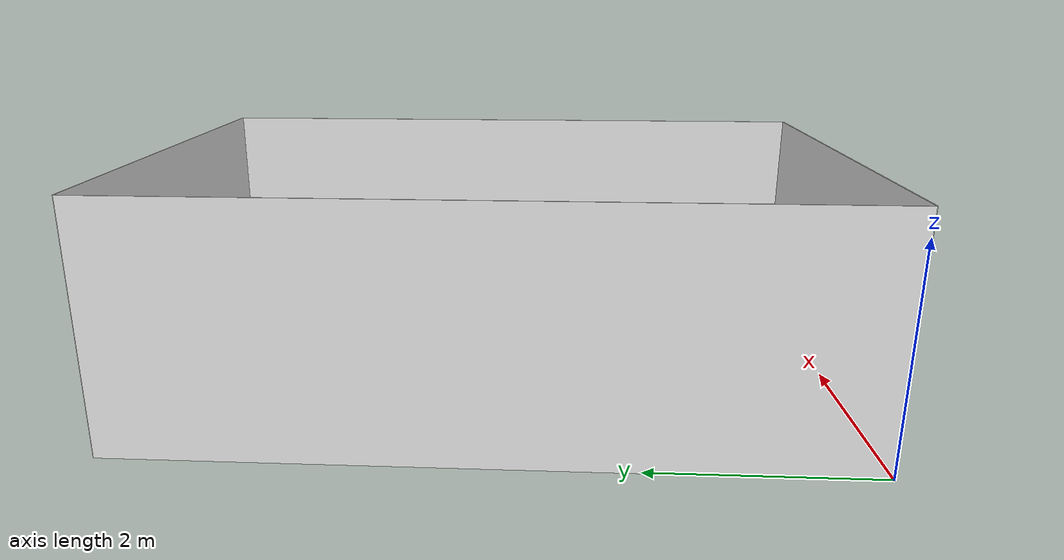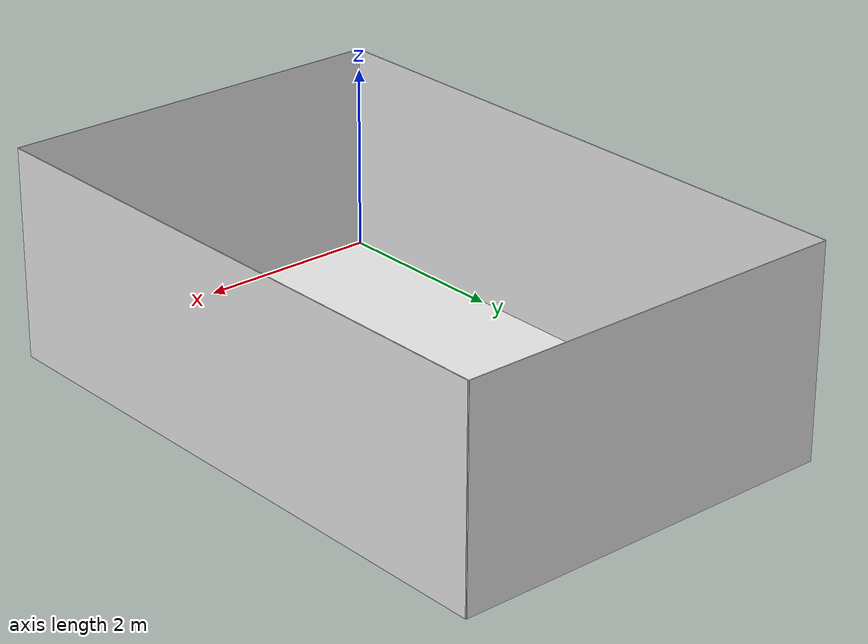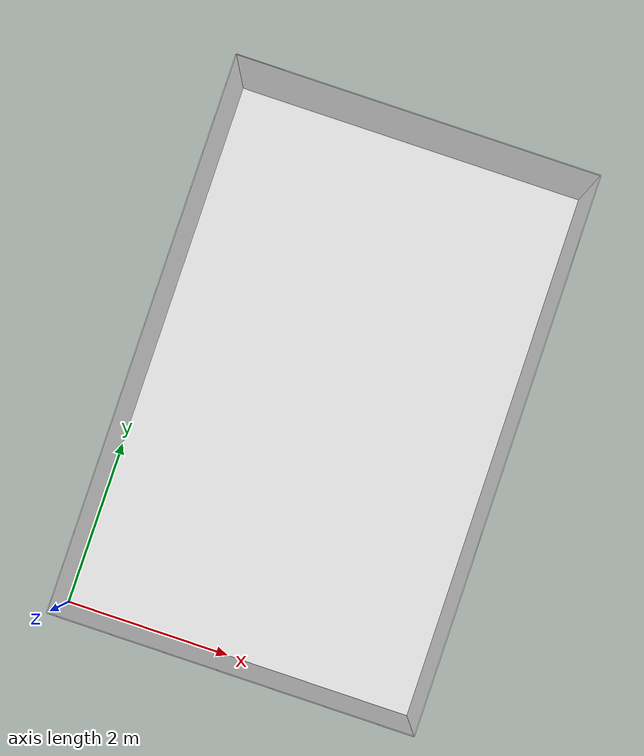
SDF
<?xml version='1.0'?>
<sdf version='1.6'>
  <model name='basement_tank_model'>
    <link name='basement_tank'>
      <inertial>
        <mass>1</mass>
      </inertial>

      <collision name='bottom'>
        <laser_retro>50</laser_retro>
        <pose frame=''>2.135 3.27 0.005 0 -0 0</pose>
        <geometry>
          <box>
            <size>4.27 6.54 0.01</size>
          </box>
        </geometry>
      </collision>
      <visual name='visual1'>
        <laser_retro>50</laser_retro>
        <pose frame=''>2.135 3.27 0.005 0 -0 0</pose>
        <geometry>
          <box>
            <size>4.27 6.54 0.01</size>
          </box>
        </geometry>
        <material>
          <script>
            <uri>file://usr/share/gz/gz-sim8/media/gazebo.material</uri>
            <name>Gazebo/White</name>
          </script>
        </material>
      </visual>

      <collision name='left_side'>
        <laser_retro>50</laser_retro>
        <pose frame=''>-0.005 3.27 1.12 0 -0 0</pose>
        <geometry>
          <box>
            <size>0.01 6.54 2.24</size>
          </box>
        </geometry>
      </collision>
      <visual name='visual2'>
        <laser_retro>50</laser_retro>
        <pose frame=''>-0.005 3.27 1.12 0 -0 0</pose>
        <geometry>
          <box>
            <size>0.01 6.54 2.24</size>
          </box>
        </geometry>
        <material>
          <script>
            <uri>file://usr/share/gz/gz-sim8/media/gazebo.material</uri>
            <name>Gazebo/White</name>
          </script>
        </material>
      </visual>

      <collision name='right_side'>
        <laser_retro>50</laser_retro>
        <pose frame=''>4.275 3.27 1.12 0 -0 0</pose>
        <geometry>
          <box>
            <size>0.01 6.54 2.24</size>
          </box>
        </geometry>
      </collision>
      <visual name='visual3'>
        <laser_retro>50</laser_retro>
        <pose frame=''>4.275 3.27 1.12 0 -0 0</pose>
        <geometry>
          <box>
            <size>0.01 6.54 2.24</size>
          </box>
        </geometry>
        <material>
          <script>
            <uri>file://usr/share/gz/gz-sim8/media/gazebo.material</uri>
            <name>Gazebo/White</name>
          </script>
        </material>
      </visual>

      <collision name='front_side'>
        <laser_retro>50</laser_retro>
        <pose frame=''>2.135 -0.005 1.12 0 -0 0</pose>
        <geometry>
          <box>
            <size>4.27 0.01 2.24</size>
          </box>
        </geometry>
      </collision>
      <visual name='visual4'>
        <laser_retro>50</laser_retro>
        <pose frame=''>2.135 -0.005 1.12 0 -0 0</pose>
        <geometry>
          <box>
            <size>4.27 0.01 2.24</size>
          </box>
        </geometry>
        <material>
          <script>
            <uri>file://usr/share/gz/gz-sim8/media/gazebo.material</uri>
            <name>Gazebo/White</name>
          </script>
        </material>
      </visual>

      <collision name='back_side'>
        <laser_retro>50</laser_retro>
        <pose frame=''>2.135 6.545 1.12 0 -0 0</pose>
        <geometry>
          <box>
            <size>4.27 0.01 2.24</size>
          </box>
        </geometry>
      </collision>
      <visual name='visual5'>
        <laser_retro>50</laser_retro>
        <pose frame=''>2.135 6.545 1.12 0 -0 0</pose>
        <geometry>
          <box>
            <size>4.27 0.01 2.24</size>
          </box>
        </geometry>
        <material>
          <script>
            <uri>file://usr/share/gz/gz-sim8/media/gazebo.material</uri>
            <name>Gazebo/White</name>
          </script>
        </material>
      </visual>

    </link>
  </model>
</sdf>
